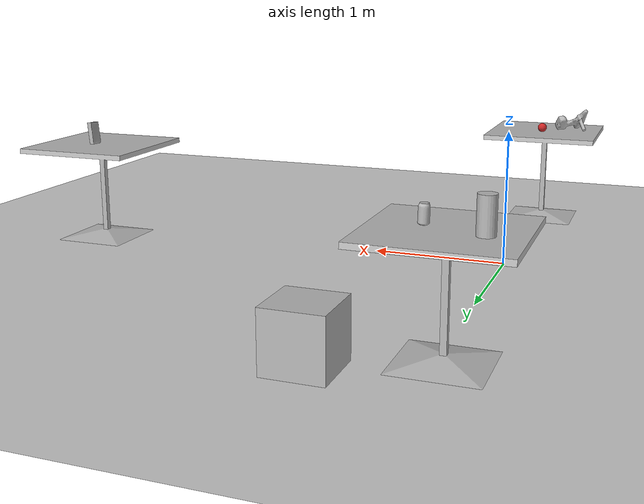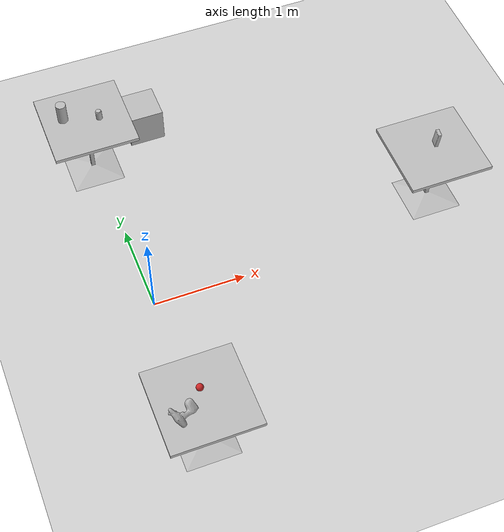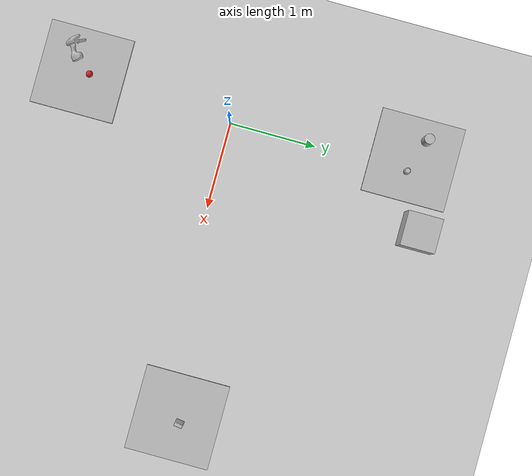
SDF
<sdf version="1.6">
 <world name="default">
  <model name="ground_plane">
   <static>1</static>
   <link name="link">
    <collision name="collision">
     <geometry><plane><normal>0 0 1</normal><size>100 100</size></plane></geometry>
     <surface><friction><ode><mu>100</mu><mu2>50</mu2></ode></friction></surface>
    </collision>
    <visual name="visual">
     <cast_shadows>0</cast_shadows>
     <geometry><plane><normal>0 0 1</normal><size>100 100</size></plane></geometry>
     <material>
      <script><uri>file://media/materials/scripts/gazebo.material</uri><name>Gazebo/Grey</name></script>
     </material>
    </visual>
   </link>
  </model>
  <light name="sun" type="directional">
   <pose>0 0 10 0 -0 0</pose>
   <diffuse>0.8 0.8 0.8 1</diffuse>
   <specular>0.1 0.1 0.1 1</specular>
   <attenuation>
    <range>1000</range>
    <constant>0.9</constant>
    <linear>0.01</linear>
    <quadratic>0.001</quadratic>
   </attenuation>
   <direction>-0.5 0.5 -1</direction>
  </light>
  <plugin name="ros_interface_plugin" filename="librotors_gazebo_ros_interface_plugin.so"/>
  <spherical_coordinates>
   <surface_model>EARTH_WGS84</surface_model>
   <latitude_deg>47.3667</latitude_deg>
   <longitude_deg>8.55</longitude_deg>
   <elevation>500</elevation>
   <heading_deg>0</heading_deg>
  </spherical_coordinates>
  <physics name="default_physics" default="0" type="ode">
   <ode>
    <solver>
     <type>quick</type>
     <iters>1000</iters>
     <sor>1.3</sor>
     <use_dynamic_moi_rescaling>0</use_dynamic_moi_rescaling>
    </solver>
    <constraints>
     <cfm>0</cfm>
     <erp>0.2</erp>
     <contact_max_correcting_vel>100</contact_max_correcting_vel>
     <contact_surface_layer>0.001</contact_surface_layer>
    </constraints>
   </ode>
   <max_step_size>0.01</max_step_size>
   <real_time_factor>1</real_time_factor>
   <real_time_update_rate>100</real_time_update_rate>
  </physics>
  <gravity>0 0 -9.8</gravity>
  <magnetic_field>6e-06 2.3e-05 -4.2e-05</magnetic_field>
  <atmosphere type="adiabatic"/>
  <scene><ambient>0.4 0.4 0.4 1</ambient><background>0.7 0.7 0.7 1</background><shadows>1</shadows></scene>
  <model name="robot">
   <link name="sugar">
    <inertial>
     <pose>-1 0 0 0 -0 0</pose>
     <mass>0.002</mass>
     <inertia><ixx>0.0017</ixx><ixy>0</ixy><ixz>0</ixz><iyy>0.0017</iyy><iyz>0</iyz><izz>0.0017</izz></inertia>
    </inertial>
    <collision name="sugar_collision">
     <pose>-1 0 0 -1.57 0 0</pose>
     <geometry>
      <mesh>
       <scale>1 1 1</scale>
       <uri>/home/skywoodsz/uav/rotors_arm_ws/src/fly/ycb_model/cfg/sugar/texture_map.dae</uri>
      </mesh>
     </geometry>
     <surface>
      <friction><ode><mu>1e+06</mu><mu2>1e+06</mu2></ode></friction>
      <contact><ode><kp>1e+07</kp><kd>1</kd><min_depth>0.001</min_depth><max_vel>0.1</max_vel></ode></contact>
     </surface>
    </collision>
    <visual name="sugar_visual">
     <pose>-1 0 0 -1.57 0 0</pose>
     <geometry>
      <mesh>
       <scale>1 1 1</scale>
       <uri>/home/skywoodsz/uav/rotors_arm_ws/src/fly/ycb_model/cfg/sugar/texture_map.dae</uri>
      </mesh>
     </geometry>
    </visual>
   </link>
   <pose>2.31533 0.437071 0.938857 -0.00936 -0.072044 3.06236</pose>
  </model>
  <model name="cafe_table">
   <static>1</static>
   <link name="link">
    <collision name="surface">
     <pose>0 0 0.755 0 -0 0</pose>
     <geometry><box><size>0.913 0.913 0.04</size></box></geometry>
    </collision>
    <collision name="column">
     <pose>0 0 0.37 0 -0 0</pose>
     <geometry><box><size>0.042 0.042 0.74</size></box></geometry>
    </collision>
    <collision name="base">
     <pose>0 0 0.02 0 -0 0</pose>
     <geometry><box><size>0.56 0.56 0.04</size></box></geometry>
    </collision>
    <visual name="visual">
     <geometry><mesh><uri>model://cafe_table/meshes/cafe_table.dae</uri><scale>1 1 1</scale></mesh></geometry>
    </visual>
   </link>
   <pose>3.26334 0.320204 0 0 -0 0</pose>
  </model>
  <model name="cafe_table_0">
   <static>1</static>
   <link name="link">
    <collision name="surface">
     <pose>0 0 0.755 0 -0 0</pose>
     <geometry><box><size>0.913 0.913 0.04</size></box></geometry>
    </collision>
    <collision name="column">
     <pose>0 0 0.37 0 -0 0</pose>
     <geometry><box><size>0.042 0.042 0.74</size></box></geometry>
    </collision>
    <collision name="base">
     <pose>0 0 0.02 0 -0 0</pose>
     <geometry><box><size>0.56 0.56 0.04</size></box></geometry>
    </collision>
    <visual name="visual">
     <geometry><mesh><uri>model://cafe_table/meshes/cafe_table.dae</uri><scale>1 1 1</scale></mesh></geometry>
    </visual>
   </link>
   <pose>-0.049778 2.02618 0 0 -0 0</pose>
  </model>
  <model name="cardboard_box">
   <pose>0.644446 2.37181 0.149508 3e-06 -2e-06 0</pose>
   <link name="link">
    <inertial>
     <mass>2</mass>
     <inertia>
      <ixx>0.0416667</ixx>
      <ixy>0</ixy>
      <ixz>0</ixz>
      <iyy>0.0566667</iyy>
      <iyz>0</iyz>
      <izz>0.0683333</izz>
     </inertia>
    </inertial>
    <collision name="collision">
     <geometry><box><size>0.5 0.4 0.3</size></box></geometry>
     <surface>
      <friction><ode><mu>1</mu><mu2>1</mu2></ode></friction>
      <contact><ode><kp>1e+07</kp><kd>1</kd><min_depth>0.001</min_depth><max_vel>0.1</max_vel></ode></contact>
     </surface>
    </collision>
    <visual name="visual">
     <pose>0 0 -0.15 0 -0 0</pose>
     <geometry>
      <mesh><uri>model://cardboard_box/meshes/cardboard_box.dae</uri><scale>1 1 1</scale></mesh>
     </geometry>
    </visual>
   </link>
  </model>
  <model name="cafe_table_1">
   <static>1</static>
   <link name="link">
    <collision name="surface">
     <pose>0 0 0.755 0 -0 0</pose>
     <geometry><box><size>0.913 0.913 0.04</size></box></geometry>
    </collision>
    <collision name="column">
     <pose>0 0 0.37 0 -0 0</pose>
     <geometry><box><size>0.042 0.042 0.74</size></box></geometry>
    </collision>
    <collision name="base">
     <pose>0 0 0.02 0 -0 0</pose>
     <geometry><box><size>0.56 0.56 0.04</size></box></geometry>
    </collision>
    <visual name="visual">
     <geometry><mesh><uri>model://cafe_table/meshes/cafe_table.dae</uri><scale>1 1 1</scale></mesh></geometry>
    </visual>
   </link>
   <pose>-0.030173 -1.6426 0 0 -0 0</pose>
  </model>
  <model name="coke_can">
   <link name="link">
    <inertial>
     <mass>0.39</mass>
     <inertia>
      <ixx>0.00055575</ixx>
      <ixy>0</ixy>
      <ixz>0</ixz>
      <iyy>0.00055575</iyy>
      <iyz>0</iyz>
      <izz>0.0001755</izz>
     </inertia>
    </inertial>
    <collision name="collision">
     <pose>0.003937 0.004724 -0.18 0 -0 0</pose>
     <geometry><mesh><uri>model://coke_can/meshes/coke_can.dae</uri><scale>1 1 1</scale></mesh></geometry>
    </collision>
    <visual name="visual">
     <pose>0.003937 0.004724 -0.18 0 -0 0</pose>
     <geometry><mesh><uri>model://coke_can/meshes/coke_can.dae</uri><scale>1 1 1</scale></mesh></geometry>
    </visual>
   </link>
   <pose>0.094362 1.98837 0.772552 -0.01986 -0.019649 1.12558</pose>
  </model>
  <model name="beer">
   <link name="link">
    <pose>0 0 0.115 0 -0 0</pose>
    <inertial>
     <mass>0.39</mass>
     <inertia><ixx>0.00058</ixx><ixy>0</ixy><ixz>0</ixz><iyy>0.00058</iyy><iyz>0</iyz><izz>0.00019</izz></inertia>
    </inertial>
    <collision name="collision">
     <geometry><cylinder><radius>0.055</radius><length>0.23</length></cylinder></geometry>
    </collision>
    <visual name="visual">
     <geometry><cylinder><radius>0.055</radius><length>0.23</length></cylinder></geometry>
     <material>
      <script>
       <uri>model://beer/materials/scripts</uri>
       <uri>model://beer/materials/textures</uri>
       <name>Beer/Diffuse</name>
      </script>
     </material>
    </visual>
   </link>
   <pose>-0.276918 2.10801 0.775138 -0.001256 -0.00218 -0.007361</pose>
  </model>
  <model name="drill">
   <link name="link">
    <inertial>
     <pose>-0.00637 -0.008 0.13254 0 -0 0</pose>
     <inertia>
      <ixx>0.0133113</ixx>
      <ixy>-0.00030365</ixy>
      <ixz>-0.00034148</ixz>
      <iyy>0.0115766</iyy>
      <iyz>0.00088073</iyz>
      <izz>0.00378028</izz>
     </inertia>
     <mass>1.50252</mass>
    </inertial>
    <collision name="collision">
     <pose>0 0 -0.09 0 -0 0</pose>
     <geometry>
      <mesh><uri>model://cordless_drill/meshes/cordless_drill.stl</uri><scale>1 1 1</scale></mesh>
     </geometry>
    </collision>
    <visual name="visual">
     <pose>0 0 -0.09 0 -0 0</pose>
     <geometry>
      <mesh><uri>model://cordless_drill/meshes/cordless_drill.dae</uri><scale>1 1 1</scale></mesh>
     </geometry>
    </visual>
   </link>
   <pose>-0.124089 -1.69572 0.844604 1.45844 -0.752419 -0.941332</pose>
  </model>
  <model name="cricket_ball">
   <link name="link">
    <pose>0 0 0.0375 0 -0 0</pose>
    <inertial>
     <mass>0.1467</mass>
     <inertia>
      <ixx>8.25187e-05</ixx>
      <ixy>0</ixy>
      <ixz>0</ixz>
      <iyy>8.25187e-05</iyy>
      <iyz>0</iyz>
      <izz>8.25187e-05</izz>
     </inertia>
    </inertial>
    <collision name="collision">
     <geometry><sphere><radius>0.0375</radius></sphere></geometry>
     <surface>
      <contact>
       <poissons_ratio>0.347</poissons_ratio>
       <elastic_modulus>8.8e+09</elastic_modulus>
       <ode><kp>100000</kp><kd>100</kd><max_vel>100</max_vel><min_depth>0.001</min_depth></ode>
      </contact>
      <friction>
       <torsional>
        <coefficient>1</coefficient>
        <use_patch_radius>0</use_patch_radius>
        <surface_radius>0.01</surface_radius>
       </torsional>
      </friction>
     </surface>
    </collision>
    <visual name="visual">
     <geometry><sphere><radius>0.0375</radius></sphere></geometry>
     <material>
      <script><uri>file://media/materials/scripts/gazebo.material</uri><name>Gazebo/Red</name></script>
     </material>
    </visual>
    <velocity_decay><linear>0</linear><angular>0.005</angular></velocity_decay>
   </link>
   <pose>-0.015569 -1.55239 0.773986 0 -0 0</pose>
  </model>
 </world>
</sdf>
